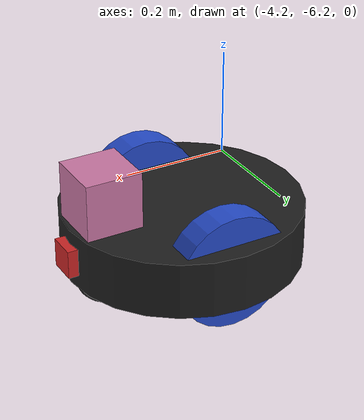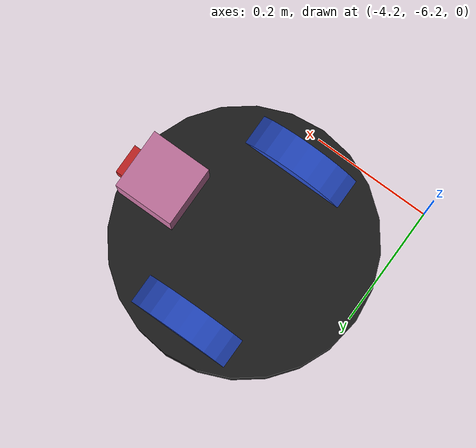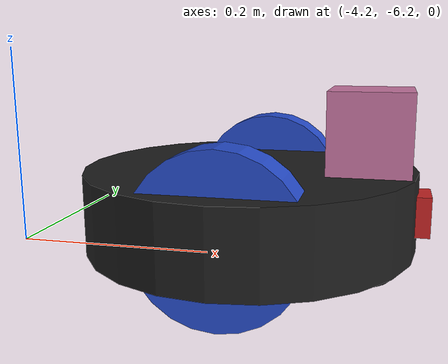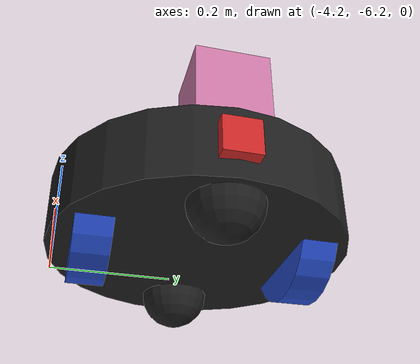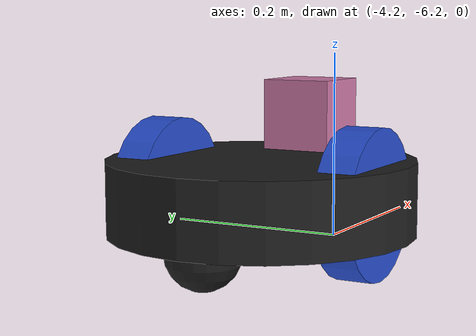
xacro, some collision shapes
<?xml version='1.0'?>

<robot name="my_robot" xmlns:xacro="http://www.ros.org/wiki/xacro">

<xacro:include filename="$(find my_robot)/urdf/my_robot.gazebo" />

  <link name="robot_footprint"></link>

  <joint name="robot_footprint_joint" type="fixed">
    <origin xyz="-4 -6 0" rpy="0 0 0" />
    <parent link="robot_footprint"/>
    <child link="chassis" />
  </joint>

  <link name='chassis'>
    <pose>0 0 0.1 0 0 0</pose>

    <inertial>
      <mass value="15.0"/>
      <origin xyz="0.0 0 0" rpy=" 0 0 0"/>
      <inertia
          ixx="0.1" ixy="0" ixz="0"
          iyy="0.1" iyz="0"
          izz="0.1"
      />
    </inertial>

    <collision name='collision'>
      <origin xyz="0 0 0" rpy=" 0 0 0"/>
      <geometry>
        <cylinder radius="0.21" length="0.1"/>
      </geometry>
    </collision>

    <visual name='chassis_visual'>
      <origin xyz="0 0 0" rpy=" 0 0 0"/>
      <geometry>
        <cylinder radius="0.21" length="0.1"/>
      </geometry>
    </visual>

    <collision name='back_caster_collision'>
      <origin xyz="-0.15 0 -0.05" rpy=" 0 0 0"/>
      <geometry>
        <sphere radius="0.0499"/>
      </geometry>
    </collision>

    <visual name='back_caster_visual'>
      <origin xyz="-0.15 0 -0.05" rpy=" 0 0 0"/>
      <geometry>
        <sphere radius="0.05"/>
      </geometry>
    </visual>

    <collision name='front_caster_collision'>
      <origin xyz="0.15 0 -0.05" rpy=" 0 0 0"/>
      <geometry>
        <sphere radius="0.0499"/>
      </geometry>
    </collision>

    <visual name='front_caster_visual'>
      <origin xyz="0.15 0 -0.05" rpy=" 0 0 0"/>
      <geometry>
        <sphere radius="0.05"/>
      </geometry>
    </visual>

  </link>

  <link name="LEFT_wheel">

    <inertial>
      <mass value="5.0"/>
      <origin xyz="0.0 0 0" rpy=" 0 1.5707 1.5707"/>
      <inertia
          ixx="0.1" ixy="0" ixz="0"
          iyy="0.1" iyz="0"
          izz="0.1"
      />
    </inertial>

    <collision name='LEFT_wheel_collision'>
      <origin xyz="0 0 0" rpy=" 0 1.5707 1.5707"/>
      <geometry>
        <cylinder radius="0.1" length="0.05"/>
      </geometry>
    </collision>

    <visual name='LEFT_wheel_visual'>
      <origin xyz="0 0 0" rpy=" 0 1.5707 1.5707"/>
      <geometry>
        <cylinder radius="0.1" length="0.05"/>
      </geometry>
    </visual>

  </link>

  <link name="RIGHT_wheel">

    <inertial>
      <mass value="5.0"/>
      <origin xyz="0.0 0 0" rpy=" 0 1.5707 1.5707"/>
      <inertia
          ixx="0.1" ixy="0" ixz="0"
          iyy="0.1" iyz="0"
          izz="0.1"
      />
    </inertial>

    <collision name='RIGHT_wheel_collision'>
      <origin xyz="0 0 0" rpy=" 0 1.5707 1.5707"/>
      <geometry>
        <cylinder radius="0.1" length="0.05"/>
      </geometry>
    </collision>

    <visual name='RIGHT_wheel_visual'>
      <origin xyz="0 0 0" rpy=" 0 1.5707 1.5707"/>
      <geometry>
        <cylinder radius="0.1" length="0.05"/>
      </geometry>
    </visual>

  </link>

  <joint type="continuous" name="left_wheel_hinge">
    <origin xyz="0 0.15 0" rpy="0 0 0"/>
    <child link="LEFT_wheel"/>
    <parent link="chassis"/>
    <axis xyz="0 1 0" rpy="0 0 0"/>
    <limit effort="10000" velocity="1000"/>
    <dynamics damping="1.0" friction="1.0"/>
  </joint>

  <joint type="continuous" name="right_wheel_hinge">
    <origin xyz="0 -0.15 0" rpy="0 0 0"/>
    <child link="RIGHT_wheel"/>
    <parent link="chassis"/>
    <axis xyz="0 1 0" rpy="0 0 0"/>
    <limit effort="10000" velocity="1000"/>
    <dynamics damping="1.0" friction="1.0"/>
  </joint>

  <link name="camera">

    <inertial>
      <mass value="0.1"/>
      <origin xyz="0.0 0 0" rpy=" 0 0 0"/>
      <inertia
          ixx="1e-6" ixy="0" ixz="0"
          iyy="1e-6" iyz="0"
          izz="1e-6"
      />
    </inertial>

    <collision name='camera_collision'>
      <origin xyz="0 0 0" rpy=" 0 0 0"/>
      <geometry>
        <box size="0.05 0.05 0.05"/>
      </geometry>
    </collision>

    <visual name='camera_visual'>
      <origin xyz="0 0 0" rpy=" 0 0 0"/>
      <geometry>
        <box size="0.05 0.05 0.05"/>
      </geometry>
    </visual>

  </link>

  <joint type="fixed" name="camera_joint">
    <origin xyz="0.2 0 0" rpy="0 0 0"/>
    <child link="camera"/>
    <parent link="chassis"/>
    <axis xyz="0 1 0" rpy="0 0 0"/>
    <limit effort="10000" velocity="1000"/>
    <dynamics damping="1.0" friction="1.0"/>
  </joint>

  <link name="camera_link_optical"></link>

  <joint name="camera_optical_joint" type="fixed">
    <origin xyz="0 0 0" rpy="-1.5707 0 -1.5707"/>
    <parent link="camera"/>
    <child link="camera_link_optical"/>
  </joint>

  <link name="hokuyo">

    <inertial>
      <mass value="1e-5"/>
      <origin xyz="0.0 0 0" rpy=" 0 0 0"/>
      <inertia
          ixx="1e-6" ixy="0" ixz="0"
          iyy="1e-6" iyz="0"
          izz="1e-6"
      />
    </inertial>

    <collision name='hokuyo_collision'>
      <origin xyz="0 0 0" rpy=" 0 0 0"/>
      <geometry>
        <box size="0.1 0.1 0.1"/>
      </geometry>
    </collision>

    <visual name='hokuyo_visual'>
      <origin xyz="0 0 0" rpy=" 0 0 0"/>
      <geometry>
        <mesh filename="package://my_robot/meshes/hokuyo.dae"/>
      </geometry>
    </visual>

  </link>

  <joint type="fixed" name="hokuyo_joint">
    <origin xyz="0.15 0 0.1" rpy="0 0 0"/>
    <child link="hokuyo"/>
    <parent link="chassis"/>
    <axis xyz="0 1 0" rpy="0 0 0"/>
    <limit effort="10000" velocity="1000"/>
    <dynamics damping="1.0" friction="1.0"/>
  </joint>

   <gazebo reference="LEFT_wheel">
    <material>Gazebo/Blue</material>
   </gazebo>

   <gazebo reference="RIGHT_wheel">
    <material>Gazebo/Blue</material>
   </gazebo>

   <gazebo reference="chassis">
    <material>Gazebo/Black</material>
   </gazebo>

   <gazebo reference="camera">
    <material>Gazebo/Red</material>
   </gazebo>

</robot>
